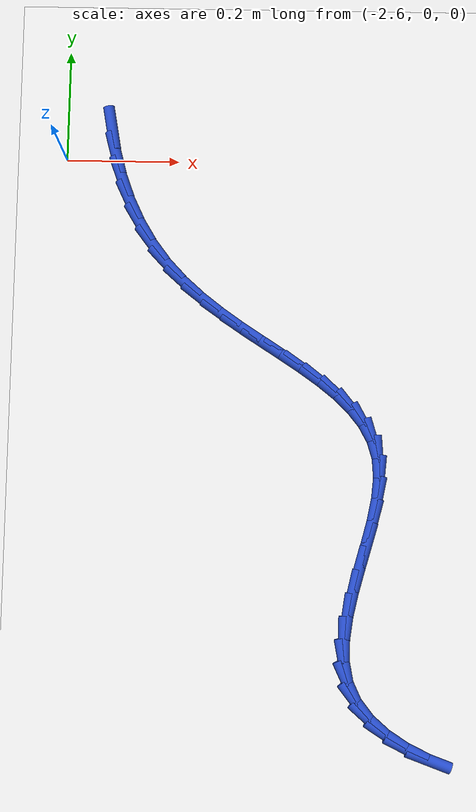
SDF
<sdf version="1.6">
 <world name="default">
  <model name="ground_plane">
   <static>1</static>
   <link name="link">
    <collision name="collision">
     <geometry><plane><normal>0 0 1</normal><size>100 100</size></plane></geometry>
     <surface><friction><ode><mu>100</mu><mu2>50</mu2></ode></friction></surface>
    </collision>
    <visual name="visual">
     <cast_shadows>0</cast_shadows>
     <geometry><plane><normal>0 0 1</normal><size>100 100</size></plane></geometry>
     <material>
      <script><uri>file://media/materials/scripts/gazebo.material</uri><name>Gazebo/WhiteGlow</name></script>
     </material>
    </visual>
   </link>
  </model>
  <model name="line">
   <link name="link_110">
    <pose>-2.521192975841129 0.05754796455533718 0.01 0 1.57 -1.3954115140192027</pose>
    <collision name="collision">
     <geometry><cylinder><radius>0.01</radius><length>0.08</length></cylinder></geometry>
    </collision>
    <visual name="visual">
     <material>
      <script><name>Gazebo/Blue</name><uri>file://media/materials/scripts/gazebo.material</uri></script>
     </material>
     <geometry><cylinder><radius>0.01</radius><length>0.08</length></cylinder></geometry>
    </visual>
   </link>
   <link name="link_111">
    <pose>-2.5132017659595296 0.01245223963269862 0.01 0 1.57 -1.3098978908629877</pose>
    <collision name="collision">
     <geometry><cylinder><radius>0.01</radius><length>0.08</length></cylinder></geometry>
    </collision>
    <visual name="visual">
     <material>
      <script><name>Gazebo/Blue</name><uri>file://media/materials/scripts/gazebo.material</uri></script>
     </material>
     <geometry><cylinder><radius>0.01</radius><length>0.08</length></cylinder></geometry>
    </visual>
   </link>
   <link name="link_112">
    <pose>-2.5014554463476424 -0.031544138211478175 0.01 0 1.57 -1.2211882330866812</pose>
    <collision name="collision">
     <geometry><cylinder><radius>0.01</radius><length>0.08</length></cylinder></geometry>
    </collision>
    <visual name="visual">
     <material>
      <script><name>Gazebo/Blue</name><uri>file://media/materials/scripts/gazebo.material</uri></script>
     </material>
     <geometry><cylinder><radius>0.01</radius><length>0.08</length></cylinder></geometry>
    </visual>
   </link>
   <link name="link_113">
    <pose>-2.4859765219182655 -0.07400048868447377 0.01 0 1.57 -1.1280922064247654</pose>
    <collision name="collision">
     <geometry><cylinder><radius>0.01</radius><length>0.08</length></cylinder></geometry>
    </collision>
    <visual name="visual">
     <material>
      <script><name>Gazebo/Blue</name><uri>file://media/materials/scripts/gazebo.material</uri></script>
     </material>
     <geometry><cylinder><radius>0.01</radius><length>0.08</length></cylinder></geometry>
    </visual>
   </link>
   <link name="link_114">
    <pose>-2.4667874975841997 -0.11447613149357216 0.01 0 1.57 -1.0295257988859814</pose>
    <collision name="collision">
     <geometry><cylinder><radius>0.01</radius><length>0.08</length></cylinder></geometry>
    </collision>
    <visual name="visual">
     <material>
      <script><name>Gazebo/Blue</name><uri>file://media/materials/scripts/gazebo.material</uri></script>
     </material>
     <geometry><cylinder><radius>0.01</radius><length>0.08</length></cylinder></geometry>
    </visual>
   </link>
   <link name="link_115">
    <pose>-2.4439108782582446 -0.15253038634605617 0.01 0 1.57 -0.924616981514831</pose>
    <collision name="collision">
     <geometry><cylinder><radius>0.01</radius><length>0.08</length></cylinder></geometry>
    </collision>
    <visual name="visual">
     <material>
      <script><name>Gazebo/Blue</name><uri>file://media/materials/scripts/gazebo.material</uri></script>
     </material>
     <geometry><cylinder><radius>0.01</radius><length>0.08</length></cylinder></geometry>
    </visual>
   </link>
   <link name="link_116">
    <pose>-2.4173691701168982 -0.18772257442336707 0.01 0 1.57 -0.817799917988975</pose>
    <collision name="collision">
     <geometry><cylinder><radius>0.01</radius><length>0.08</length></cylinder></geometry>
    </collision>
    <visual name="visual">
     <material>
      <script><name>Gazebo/Blue</name><uri>file://media/materials/scripts/gazebo.material</uri></script>
     </material>
     <geometry><cylinder><radius>0.01</radius><length>0.08</length></cylinder></geometry>
    </visual>
   </link>
   <link name="link_117">
    <pose>-2.3873268644425947 -0.21977764859371623 0.01 0 1.57 -0.7278113312516408</pose>
    <collision name="collision">
     <geometry><cylinder><radius>0.01</radius><length>0.08</length></cylinder></geometry>
    </collision>
    <visual name="visual">
     <material>
      <script><name>Gazebo/Blue</name><uri>file://media/materials/scripts/gazebo.material</uri></script>
     </material>
     <geometry><cylinder><radius>0.01</radius><length>0.08</length></cylinder></geometry>
    </visual>
   </link>
   <link name="link_118">
    <pose>-2.3544814750660166 -0.24904235528014945 0.01 0 1.57 -0.6588954460648782</pose>
    <collision name="collision">
     <geometry><cylinder><radius>0.01</radius><length>0.08</length></cylinder></geometry>
    </collision>
    <visual name="visual">
     <material>
      <script><name>Gazebo/Blue</name><uri>file://media/materials/scripts/gazebo.material</uri></script>
     </material>
     <geometry><cylinder><radius>0.01</radius><length>0.08</length></cylinder></geometry>
    </visual>
   </link>
   <link name="link_119">
    <pose>-2.3196555724752868 -0.2760093248347146 0.01 0 1.57 -0.6102253977524389</pose>
    <collision name="collision">
     <geometry><cylinder><radius>0.01</radius><length>0.08</length></cylinder></geometry>
    </collision>
    <visual name="visual">
     <material>
      <script><name>Gazebo/Blue</name><uri>file://media/materials/scripts/gazebo.material</uri></script>
     </material>
     <geometry><cylinder><radius>0.01</radius><length>0.08</length></cylinder></geometry>
    </visual>
   </link>
   <link name="link_120">
    <pose>-2.283671727158531 -0.3011711876094576 0.01 0 1.57 -0.5810430520115719</pose>
    <collision name="collision">
     <geometry><cylinder><radius>0.01</radius><length>0.08</length></cylinder></geometry>
    </collision>
    <visual name="visual">
     <material>
      <script><name>Gazebo/Blue</name><uri>file://media/materials/scripts/gazebo.material</uri></script>
     </material>
     <geometry><cylinder><radius>0.01</radius><length>0.08</length></cylinder></geometry>
    </visual>
   </link>
   <link name="link_121">
    <pose>-2.24735250960387 -0.325020573956426 0.01 0 1.57 -0.5712322344465244</pose>
    <collision name="collision">
     <geometry><cylinder><radius>0.01</radius><length>0.08</length></cylinder></geometry>
    </collision>
    <visual name="visual">
     <material>
      <script><name>Gazebo/Blue</name><uri>file://media/materials/scripts/gazebo.material</uri></script>
     </material>
     <geometry><cylinder><radius>0.01</radius><length>0.08</length></cylinder></geometry>
    </visual>
   </link>
   <link name="link_122">
    <pose>-2.2115204902994288 -0.3480501142276672 0.01 0 1.57 -0.5817093478787315</pose>
    <collision name="collision">
     <geometry><cylinder><radius>0.01</radius><length>0.08</length></cylinder></geometry>
    </collision>
    <visual name="visual">
     <material>
      <script><name>Gazebo/Blue</name><uri>file://media/materials/scripts/gazebo.material</uri></script>
     </material>
     <geometry><cylinder><radius>0.01</radius><length>0.08</length></cylinder></geometry>
    </visual>
   </link>
   <link name="link_123">
    <pose>-2.176998239733329 -0.3707524387752282 0.01 0 1.57 -0.6147509837691046</pose>
    <collision name="collision">
     <geometry><cylinder><radius>0.01</radius><length>0.08</length></cylinder></geometry>
    </collision>
    <visual name="visual">
     <material>
      <script><name>Gazebo/Blue</name><uri>file://media/materials/scripts/gazebo.material</uri></script>
     </material>
     <geometry><cylinder><radius>0.01</radius><length>0.08</length></cylinder></geometry>
    </visual>
   </link>
   <link name="link_124">
    <pose>-2.1446083283936948 -0.39362017795115606 0.01 0 1.57 -0.6742805370312847</pose>
    <collision name="collision">
     <geometry><cylinder><radius>0.01</radius><length>0.08</length></cylinder></geometry>
    </collision>
    <visual name="visual">
     <material>
      <script><name>Gazebo/Blue</name><uri>file://media/materials/scripts/gazebo.material</uri></script>
     </material>
     <geometry><cylinder><radius>0.01</radius><length>0.08</length></cylinder></geometry>
    </visual>
   </link>
   <link name="link_125">
    <pose>-2.115173326768648 -0.41714596210749877 0.01 0 1.57 -0.7659095851316697</pose>
    <collision name="collision">
     <geometry><cylinder><radius>0.01</radius><length>0.08</length></cylinder></geometry>
    </collision>
    <visual name="visual">
     <material>
      <script><name>Gazebo/Blue</name><uri>file://media/materials/scripts/gazebo.material</uri></script>
     </material>
     <geometry><cylinder><radius>0.01</radius><length>0.08</length></cylinder></geometry>
    </visual>
   </link>
   <link name="link_126">
    <pose>-2.0895158053463128 -0.44182242159630203 0.01 0 1.57 -0.8960169607476807</pose>
    <collision name="collision">
     <geometry><cylinder><radius>0.01</radius><length>0.08</length></cylinder></geometry>
    </collision>
    <visual name="visual">
     <material>
      <script><name>Gazebo/Blue</name><uri>file://media/materials/scripts/gazebo.material</uri></script>
     </material>
     <geometry><cylinder><radius>0.01</radius><length>0.08</length></cylinder></geometry>
    </visual>
   </link>
   <link name="link_127">
    <pose>-2.068458334614813 -0.46814218676961383 0.01 0 1.57 -1.0683791357824977</pose>
    <collision name="collision">
     <geometry><cylinder><radius>0.01</radius><length>0.08</length></cylinder></geometry>
    </collision>
    <visual name="visual">
     <material>
      <script><name>Gazebo/Blue</name><uri>file://media/materials/scripts/gazebo.material</uri></script>
     </material>
     <geometry><cylinder><radius>0.01</radius><length>0.08</length></cylinder></geometry>
    </visual>
   </link>
   <link name="link_128">
    <pose>-2.0528234850622713 -0.49659788797948107 0.01 0 1.57 -1.2774405554351516</pose>
    <collision name="collision">
     <geometry><cylinder><radius>0.01</radius><length>0.08</length></cylinder></geometry>
    </collision>
    <visual name="visual">
     <material>
      <script><name>Gazebo/Blue</name><uri>file://media/materials/scripts/gazebo.material</uri></script>
     </material>
     <geometry><cylinder><radius>0.01</radius><length>0.08</length></cylinder></geometry>
    </visual>
   </link>
   <link name="link_129">
    <pose>-2.0434338271768104 -0.527682155577951 0.01 0 1.57 -1.4962990865653207</pose>
    <collision name="collision">
     <geometry><cylinder><radius>0.01</radius><length>0.08</length></cylinder></geometry>
    </collision>
    <visual name="visual">
     <material>
      <script><name>Gazebo/Blue</name><uri>file://media/materials/scripts/gazebo.material</uri></script>
     </material>
     <geometry><cylinder><radius>0.01</radius><length>0.08</length></cylinder></geometry>
    </visual>
   </link>
   <link name="link_130">
    <pose>-2.0408887679231538 -0.5617820669310258 0.01 0 1.57 1.479663338388997</pose>
    <collision name="collision">
     <geometry><cylinder><radius>0.01</radius><length>0.08</length></cylinder></geometry>
    </collision>
    <visual name="visual">
     <material>
      <script><name>Gazebo/Blue</name><uri>file://media/materials/scripts/gazebo.material</uri></script>
     </material>
     <geometry><cylinder><radius>0.01</radius><length>0.08</length></cylinder></geometry>
    </visual>
   </link>
   <link name="link_131">
    <pose>-2.0442494999151934 -0.5985571471800691 0.01 0 1.57 1.3754125704937166</pose>
    <collision name="collision">
     <geometry><cylinder><radius>0.01</radius><length>0.08</length></cylinder></geometry>
    </collision>
    <visual name="visual">
     <material>
      <script><name>Gazebo/Blue</name><uri>file://media/materials/scripts/gazebo.material</uri></script>
     </material>
     <geometry><cylinder><radius>0.01</radius><length>0.08</length></cylinder></geometry>
    </visual>
   </link>
   <link name="link_132">
    <pose>-2.0519289791602313 -0.6373603153130438 0.01 0 1.57 1.3173304826023118</pose>
    <collision name="collision">
     <geometry><cylinder><radius>0.01</radius><length>0.08</length></cylinder></geometry>
    </collision>
    <visual name="visual">
     <material>
      <script><name>Gazebo/Blue</name><uri>file://media/materials/scripts/gazebo.material</uri></script>
     </material>
     <geometry><cylinder><radius>0.01</radius><length>0.08</length></cylinder></geometry>
    </visual>
   </link>
   <link name="link_133">
    <pose>-2.062337889820205 -0.6775434157692632 0.01 0 1.57 1.2956842621283615</pose>
    <collision name="collision">
     <geometry><cylinder><radius>0.01</radius><length>0.08</length></cylinder></geometry>
    </collision>
    <visual name="visual">
     <material>
      <script><name>Gazebo/Blue</name><uri>file://media/materials/scripts/gazebo.material</uri></script>
     </material>
     <geometry><cylinder><radius>0.01</radius><length>0.08</length></cylinder></geometry>
    </visual>
   </link>
   <link name="link_134">
    <pose>-2.073886916057051 -0.7184582929880434 0.01 0 1.57 1.3063973440858299</pose>
    <collision name="collision">
     <geometry><cylinder><radius>0.01</radius><length>0.08</length></cylinder></geometry>
    </collision>
    <visual name="visual">
     <material>
      <script><name>Gazebo/Blue</name><uri>file://media/materials/scripts/gazebo.material</uri></script>
     </material>
     <geometry><cylinder><radius>0.01</radius><length>0.08</length></cylinder></geometry>
    </visual>
   </link>
   <link name="link_135">
    <pose>-2.084986742032706 -0.7594567914086986 0.01 0 1.57 1.3503373040075985</pose>
    <collision name="collision">
     <geometry><cylinder><radius>0.01</radius><length>0.08</length></cylinder></geometry>
    </collision>
    <visual name="visual">
     <material>
      <script><name>Gazebo/Blue</name><uri>file://media/materials/scripts/gazebo.material</uri></script>
     </material>
     <geometry><cylinder><radius>0.01</radius><length>0.08</length></cylinder></geometry>
    </visual>
   </link>
   <link name="link_136">
    <pose>-2.0940480519091076 -0.7998907554705443 0.01 0 1.57 1.4331385439145048</pose>
    <collision name="collision">
     <geometry><cylinder><radius>0.01</radius><length>0.08</length></cylinder></geometry>
    </collision>
    <visual name="visual">
     <material>
      <script><name>Gazebo/Blue</name><uri>file://media/materials/scripts/gazebo.material</uri></script>
     </material>
     <geometry><cylinder><radius>0.01</radius><length>0.08</length></cylinder></geometry>
    </visual>
   </link>
   <link name="link_137">
    <pose>-2.0994815298481924 -0.8391120296128949 0.01 0 1.57 1.5650060360038678</pose>
    <collision name="collision">
     <geometry><cylinder><radius>0.01</radius><length>0.08</length></cylinder></geometry>
    </collision>
    <visual name="visual">
     <material>
      <script><name>Gazebo/Blue</name><uri>file://media/materials/scripts/gazebo.material</uri></script>
     </material>
     <geometry><cylinder><radius>0.01</radius><length>0.08</length></cylinder></geometry>
    </visual>
   </link>
   <link name="link_138">
    <pose>-2.0996978600118967 -0.8764724582750664 0.01 0 1.57 -1.3839106871154578</pose>
    <collision name="collision">
     <geometry><cylinder><radius>0.01</radius><length>0.08</length></cylinder></geometry>
    </collision>
    <visual name="visual">
     <material>
      <script><name>Gazebo/Blue</name><uri>file://media/materials/scripts/gazebo.material</uri></script>
     </material>
     <geometry><cylinder><radius>0.01</radius><length>0.08</length></cylinder></geometry>
    </visual>
   </link>
   <link name="link_139">
    <pose>-2.093107726562158 -0.911323885896372 0.01 0 1.57 -1.1377144238306678</pose>
    <collision name="collision">
     <geometry><cylinder><radius>0.01</radius><length>0.08</length></cylinder></geometry>
    </collision>
    <visual name="visual">
     <material>
      <script><name>Gazebo/Blue</name><uri>file://media/materials/scripts/gazebo.material</uri></script>
     </material>
     <geometry><cylinder><radius>0.01</radius><length>0.08</length></cylinder></geometry>
    </visual>
   </link>
   <link name="link_140">
    <pose>-2.0784237338544918 -0.9430829170015148 0.01 0 1.57 -0.9071391623348959</pose>
    <collision name="collision">
     <geometry><cylinder><radius>0.01</radius><length>0.08</length></cylinder></geometry>
    </collision>
    <visual name="visual">
     <material>
      <script><name>Gazebo/Blue</name><uri>file://media/materials/scripts/gazebo.material</uri></script>
     </material>
     <geometry><cylinder><radius>0.01</radius><length>0.08</length></cylinder></geometry>
    </visual>
   </link>
   <link name="link_141">
    <pose>-2.056160846046137 -0.9715527515703574 0.01 0 1.57 -0.7197866579487847</pose>
    <collision name="collision">
     <geometry><cylinder><radius>0.01</radius><length>0.08</length></cylinder></geometry>
    </collision>
    <visual name="visual">
     <material>
      <script><name>Gazebo/Blue</name><uri>file://media/materials/scripts/gazebo.material</uri></script>
     </material>
     <geometry><cylinder><radius>0.01</radius><length>0.08</length></cylinder></geometry>
    </visual>
   </link>
   <link name="link_142">
    <pose>-2.027500006138252 -0.9966794380828492 0.01 0 1.57 -0.5703318215737436</pose>
    <collision name="collision">
     <geometry><cylinder><radius>0.01</radius><length>0.08</length></cylinder></geometry>
    </collision>
    <visual name="visual">
     <material>
      <script><name>Gazebo/Blue</name><uri>file://media/materials/scripts/gazebo.material</uri></script>
     </material>
     <geometry><cylinder><radius>0.01</radius><length>0.08</length></cylinder></geometry>
    </visual>
   </link>
   <link name="link_143">
    <pose>-1.9936232227287605 -1.018409253583105 0.01 0 1.57 -0.44927807960572064</pose>
    <collision name="collision">
     <geometry><cylinder><radius>0.01</radius><length>0.08</length></cylinder></geometry>
    </collision>
    <visual name="visual">
     <material>
      <script><name>Gazebo/Blue</name><uri>file://media/materials/scripts/gazebo.material</uri></script>
     </material>
     <geometry><cylinder><radius>0.01</radius><length>0.08</length></cylinder></geometry>
    </visual>
   </link>
   <link name="link_144">
    <pose>-1.955712504415583 -1.036688475115241 0.01 0 1.57 -0.34773329065017683</pose>
    <collision name="collision">
     <geometry><cylinder><radius>0.01</radius><length>0.08</length></cylinder></geometry>
    </collision>
    <visual name="visual">
     <material>
      <script><name>Gazebo/Blue</name><uri>file://media/materials/scripts/gazebo.material</uri></script>
     </material>
     <geometry><cylinder><radius>0.01</radius><length>0.08</length></cylinder></geometry>
    </visual>
   </link>
  </model>
 </world>
</sdf>
